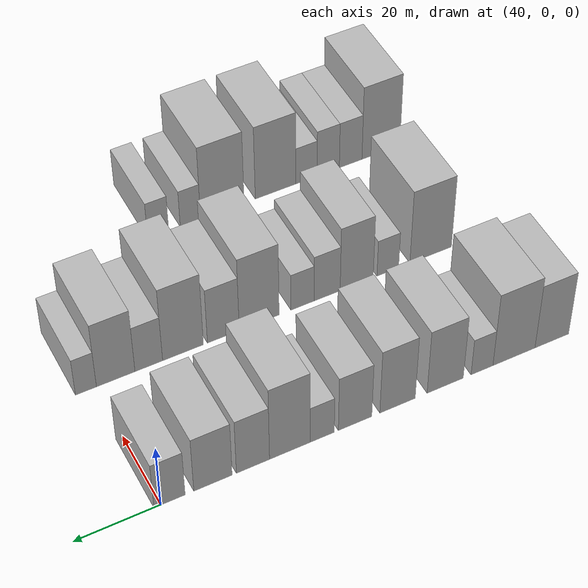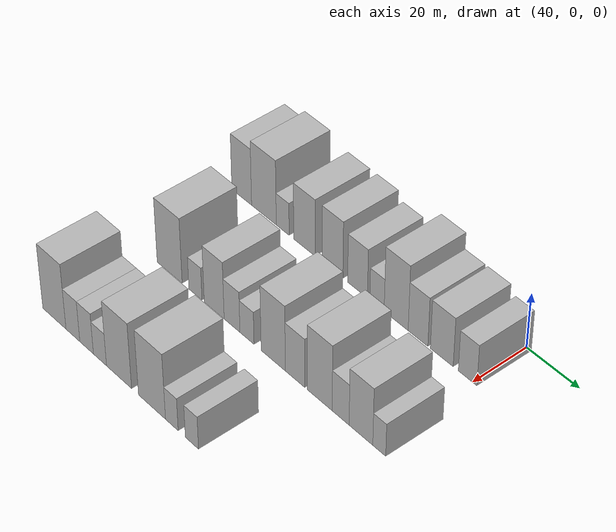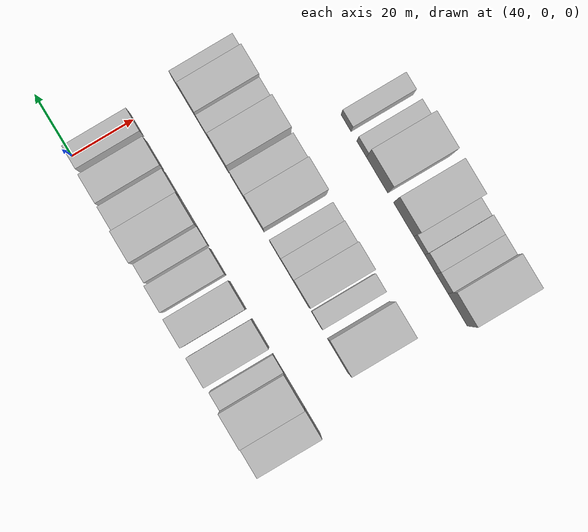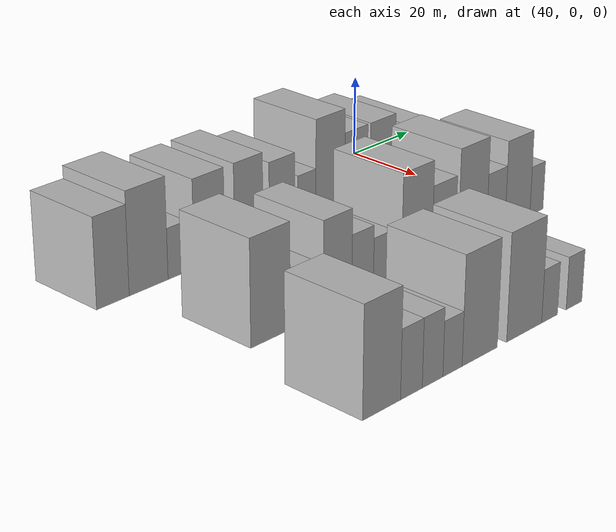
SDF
<sdf version="1.6">
 <world name="default">
  <model name="building_30">
   <static>1</static>
   <pose>50.0000 -96.5013 0 0.000000 0.000000 0.000000</pose>
   <link name="link">
    <pose>0 0 10.50 0 0 0</pose>
    <collision name="collision"><geometry><box><size>20.0000 8.9086 21.0000</size></box></geometry></collision>
    <visual name="visual">
     <cast_shadows>0</cast_shadows>
     <geometry><box><size>20.0000 8.9086 21.0000</size></box></geometry>
     <material>
      <script>
       <uri>model://HANNAS_wall/materials/scripts</uri>
       <uri>model://HANNAS_wall/materials/textures</uri>
       <name>vrc/HANNAS_wall</name>
      </script>
     </material>
    </visual>
   </link>
  </model>
  <model name="building_31">
   <static>1</static>
   <pose>50.0000 -86.5494 0 0.000000 0.000000 0.000000</pose>
   <link name="link">
    <pose>0 0 12.00 0 0 0</pose>
    <collision name="collision"><geometry><box><size>20.0000 10.9953 24.0000</size></box></geometry></collision>
    <visual name="visual">
     <cast_shadows>0</cast_shadows>
     <geometry><box><size>20.0000 10.9953 24.0000</size></box></geometry>
     <material>
      <script>
       <uri>model://HANNAS_wall/materials/scripts</uri>
       <uri>model://HANNAS_wall/materials/textures</uri>
       <name>vrc/HANNAS_wall</name>
      </script>
     </material>
    </visual>
   </link>
  </model>
  <model name="building_32">
   <static>1</static>
   <pose>50.0000 -78.2267 0 0.000000 0.000000 0.000000</pose>
   <link name="link">
    <pose>0 0 6.00 0 0 0</pose>
    <collision name="collision"><geometry><box><size>20.0000 5.6502 12.0000</size></box></geometry></collision>
    <visual name="visual">
     <cast_shadows>0</cast_shadows>
     <geometry><box><size>20.0000 5.6502 12.0000</size></box></geometry>
     <material>
      <script>
       <uri>model://HANNAS_wall/materials/scripts</uri>
       <uri>model://HANNAS_wall/materials/textures</uri>
       <name>vrc/HANNAS_wall</name>
      </script>
     </material>
    </visual>
   </link>
  </model>
  <model name="building_33">
   <static>1</static>
   <pose>50.0000 -68.7945 0 0.000000 0.000000 0.000000</pose>
   <link name="link">
    <pose>0 0 10.50 0 0 0</pose>
    <collision name="collision"><geometry><box><size>20.0000 9.2141 21.0000</size></box></geometry></collision>
    <visual name="visual">
     <cast_shadows>0</cast_shadows>
     <geometry><box><size>20.0000 9.2141 21.0000</size></box></geometry>
     <material>
      <script>
       <uri>model://HANNAS_wall/materials/scripts</uri>
       <uri>model://HANNAS_wall/materials/textures</uri>
       <name>vrc/HANNAS_wall</name>
      </script>
     </material>
    </visual>
   </link>
  </model>
  <model name="building_34">
   <static>1</static>
   <pose>50.0000 -56.7587 0 0.000000 0.000000 0.000000</pose>
   <link name="link">
    <pose>0 0 10.50 0 0 0</pose>
    <collision name="collision"><geometry><box><size>20.0000 8.8575 21.0000</size></box></geometry></collision>
    <visual name="visual">
     <cast_shadows>0</cast_shadows>
     <geometry><box><size>20.0000 8.8575 21.0000</size></box></geometry>
     <material>
      <script>
       <uri>model://HANNAS_wall/materials/scripts</uri>
       <uri>model://HANNAS_wall/materials/textures</uri>
       <name>vrc/HANNAS_wall</name>
      </script>
     </material>
    </visual>
   </link>
  </model>
  <model name="building_35">
   <static>1</static>
   <pose>50.0000 -46.2053 0 0.000000 0.000000 0.000000</pose>
   <link name="link">
    <pose>0 0 9.00 0 0 0</pose>
    <collision name="collision"><geometry><box><size>20.0000 8.2493 18.0000</size></box></geometry></collision>
    <visual name="visual">
     <cast_shadows>0</cast_shadows>
     <geometry><box><size>20.0000 8.2493 18.0000</size></box></geometry>
     <material>
      <script>
       <uri>model://HANNAS_wall/materials/scripts</uri>
       <uri>model://HANNAS_wall/materials/textures</uri>
       <name>vrc/HANNAS_wall</name>
      </script>
     </material>
    </visual>
   </link>
  </model>
  <model name="building_36">
   <static>1</static>
   <pose>50.0000 -38.1359 0 0.000000 0.000000 0.000000</pose>
   <link name="link">
    <pose>0 0 6.00 0 0 0</pose>
    <collision name="collision"><geometry><box><size>20.0000 5.8894 12.0000</size></box></geometry></collision>
    <visual name="visual">
     <cast_shadows>0</cast_shadows>
     <geometry><box><size>20.0000 5.8894 12.0000</size></box></geometry>
     <material>
      <script>
       <uri>model://HANNAS_wall/materials/scripts</uri>
       <uri>model://HANNAS_wall/materials/textures</uri>
       <name>vrc/HANNAS_wall</name>
      </script>
     </material>
    </visual>
   </link>
  </model>
  <model name="building_37">
   <static>1</static>
   <pose>50.0000 -30.3143 0 0.000000 0.000000 0.000000</pose>
   <link name="link">
    <pose>0 0 12.00 0 0 0</pose>
    <collision name="collision"><geometry><box><size>20.0000 9.7538 24.0000</size></box></geometry></collision>
    <visual name="visual">
     <cast_shadows>0</cast_shadows>
     <geometry><box><size>20.0000 9.7538 24.0000</size></box></geometry>
     <material>
      <script>
       <uri>model://HANNAS_wall/materials/scripts</uri>
       <uri>model://HANNAS_wall/materials/textures</uri>
       <name>vrc/HANNAS_wall</name>
      </script>
     </material>
    </visual>
   </link>
  </model>
  <model name="building_38">
   <static>1</static>
   <pose>50.0000 -21.4955 0 0.000000 0.000000 0.000000</pose>
   <link name="link">
    <pose>0 0 9.00 0 0 0</pose>
    <collision name="collision"><geometry><box><size>20.0000 7.8839 18.0000</size></box></geometry></collision>
    <visual name="visual">
     <cast_shadows>0</cast_shadows>
     <geometry><box><size>20.0000 7.8839 18.0000</size></box></geometry>
     <material>
      <script>
       <uri>model://HANNAS_wall/materials/scripts</uri>
       <uri>model://HANNAS_wall/materials/textures</uri>
       <name>vrc/HANNAS_wall</name>
      </script>
     </material>
    </visual>
   </link>
  </model>
  <model name="building_39">
   <static>1</static>
   <pose>50.0000 -12.0647 0 0.000000 0.000000 0.000000</pose>
   <link name="link">
    <pose>0 0 9.00 0 0 0</pose>
    <collision name="collision"><geometry><box><size>20.0000 8.9779 18.0000</size></box></geometry></collision>
    <visual name="visual">
     <cast_shadows>0</cast_shadows>
     <geometry><box><size>20.0000 8.9779 18.0000</size></box></geometry>
     <material>
      <script>
       <uri>model://HANNAS_wall/materials/scripts</uri>
       <uri>model://HANNAS_wall/materials/textures</uri>
       <name>vrc/HANNAS_wall</name>
      </script>
     </material>
    </visual>
   </link>
  </model>
  <model name="building_40">
   <static>1</static>
   <pose>50.0000 -1.9716 0 0.000000 0.000000 0.000000</pose>
   <link name="link">
    <pose>0 0 7.50 0 0 0</pose>
    <collision name="collision"><geometry><box><size>20.0000 7.2081 15.0000</size></box></geometry></collision>
    <visual name="visual">
     <cast_shadows>0</cast_shadows>
     <geometry><box><size>20.0000 7.2081 15.0000</size></box></geometry>
     <material>
      <script>
       <uri>model://HANNAS_wall/materials/scripts</uri>
       <uri>model://HANNAS_wall/materials/textures</uri>
       <name>vrc/HANNAS_wall</name>
      </script>
     </material>
    </visual>
   </link>
  </model>
  <model name="building_114">
   <static>1</static>
   <pose>85.0000 -85.1665 0 0.000000 0.000000 0.000000</pose>
   <link name="link">
    <pose>0 0 12.00 0 0 0</pose>
    <collision name="collision"><geometry><box><size>20.0000 11.1940 24.0000</size></box></geometry></collision>
    <visual name="visual">
     <cast_shadows>0</cast_shadows>
     <geometry><box><size>20.0000 11.1940 24.0000</size></box></geometry>
     <material>
      <script>
       <uri>model://HANNAS_wall/materials/scripts</uri>
       <uri>model://HANNAS_wall/materials/textures</uri>
       <name>vrc/HANNAS_wall</name>
      </script>
     </material>
    </visual>
   </link>
  </model>
  <model name="building_115">
   <static>1</static>
   <pose>85.0000 -73.6883 0 0.000000 0.000000 0.000000</pose>
   <link name="link">
    <pose>0 0 6.00 0 0 0</pose>
    <collision name="collision"><geometry><box><size>20.0000 5.7625 12.0000</size></box></geometry></collision>
    <visual name="visual">
     <cast_shadows>0</cast_shadows>
     <geometry><box><size>20.0000 5.7625 12.0000</size></box></geometry>
     <material>
      <script>
       <uri>model://HANNAS_wall/materials/scripts</uri>
       <uri>model://HANNAS_wall/materials/textures</uri>
       <name>vrc/HANNAS_wall</name>
      </script>
     </material>
    </visual>
   </link>
  </model>
  <model name="building_116">
   <static>1</static>
   <pose>85.0000 -65.4773 0 0.000000 0.000000 0.000000</pose>
   <link name="link">
    <pose>0 0 10.50 0 0 0</pose>
    <collision name="collision"><geometry><box><size>20.0000 8.6596 21.0000</size></box></geometry></collision>
    <visual name="visual">
     <cast_shadows>0</cast_shadows>
     <geometry><box><size>20.0000 8.6596 21.0000</size></box></geometry>
     <material>
      <script>
       <uri>model://HANNAS_wall/materials/scripts</uri>
       <uri>model://HANNAS_wall/materials/textures</uri>
       <name>vrc/HANNAS_wall</name>
      </script>
     </material>
    </visual>
   </link>
  </model>
  <model name="building_117">
   <static>1</static>
   <pose>85.0000 -57.7674 0 0.000000 0.000000 0.000000</pose>
   <link name="link">
    <pose>0 0 7.50 0 0 0</pose>
    <collision name="collision"><geometry><box><size>20.0000 6.7602 15.0000</size></box></geometry></collision>
    <visual name="visual">
     <cast_shadows>0</cast_shadows>
     <geometry><box><size>20.0000 6.7602 15.0000</size></box></geometry>
     <material>
      <script>
       <uri>model://HANNAS_wall/materials/scripts</uri>
       <uri>model://HANNAS_wall/materials/textures</uri>
       <name>vrc/HANNAS_wall</name>
      </script>
     </material>
    </visual>
   </link>
  </model>
  <model name="building_118">
   <static>1</static>
   <pose>85.0000 -51.3932 0 0.000000 0.000000 0.000000</pose>
   <link name="link">
    <pose>0 0 6.00 0 0 0</pose>
    <collision name="collision"><geometry><box><size>20.0000 5.9882 12.0000</size></box></geometry></collision>
    <visual name="visual">
     <cast_shadows>0</cast_shadows>
     <geometry><box><size>20.0000 5.9882 12.0000</size></box></geometry>
     <material>
      <script>
       <uri>model://HANNAS_wall/materials/scripts</uri>
       <uri>model://HANNAS_wall/materials/textures</uri>
       <name>vrc/HANNAS_wall</name>
      </script>
     </material>
    </visual>
   </link>
  </model>
  <model name="building_119">
   <static>1</static>
   <pose>85.0000 -40.3493 0 0.000000 0.000000 0.000000</pose>
   <link name="link">
    <pose>0 0 12.00 0 0 0</pose>
    <collision name="collision"><geometry><box><size>20.0000 10.0996 24.0000</size></box></geometry></collision>
    <visual name="visual">
     <cast_shadows>0</cast_shadows>
     <geometry><box><size>20.0000 10.0996 24.0000</size></box></geometry>
     <material>
      <script>
       <uri>model://HANNAS_wall/materials/scripts</uri>
       <uri>model://HANNAS_wall/materials/textures</uri>
       <name>vrc/HANNAS_wall</name>
      </script>
     </material>
    </visual>
   </link>
  </model>
  <model name="building_120">
   <static>1</static>
   <pose>85.0000 -31.3136 0 0.000000 0.000000 0.000000</pose>
   <link name="link">
    <pose>0 0 9.00 0 0 0</pose>
    <collision name="collision"><geometry><box><size>20.0000 7.9716 18.0000</size></box></geometry></collision>
    <visual name="visual">
     <cast_shadows>0</cast_shadows>
     <geometry><box><size>20.0000 7.9716 18.0000</size></box></geometry>
     <material>
      <script>
       <uri>model://HANNAS_wall/materials/scripts</uri>
       <uri>model://HANNAS_wall/materials/textures</uri>
       <name>vrc/HANNAS_wall</name>
      </script>
     </material>
    </visual>
   </link>
  </model>
  <model name="building_121">
   <static>1</static>
   <pose>85.0000 -21.3061 0 0.000000 0.000000 0.000000</pose>
   <link name="link">
    <pose>0 0 12.00 0 0 0</pose>
    <collision name="collision"><geometry><box><size>20.0000 10.0435 24.0000</size></box></geometry></collision>
    <visual name="visual">
     <cast_shadows>0</cast_shadows>
     <geometry><box><size>20.0000 10.0435 24.0000</size></box></geometry>
     <material>
      <script>
       <uri>model://HANNAS_wall/materials/scripts</uri>
       <uri>model://HANNAS_wall/materials/textures</uri>
       <name>vrc/HANNAS_wall</name>
      </script>
     </material>
    </visual>
   </link>
  </model>
  <model name="building_122">
   <static>1</static>
   <pose>85.0000 -12.9126 0 0.000000 0.000000 0.000000</pose>
   <link name="link">
    <pose>0 0 7.50 0 0 0</pose>
    <collision name="collision"><geometry><box><size>20.0000 6.7434 15.0000</size></box></geometry></collision>
    <visual name="visual">
     <cast_shadows>0</cast_shadows>
     <geometry><box><size>20.0000 6.7434 15.0000</size></box></geometry>
     <material>
      <script>
       <uri>model://HANNAS_wall/materials/scripts</uri>
       <uri>model://HANNAS_wall/materials/textures</uri>
       <name>vrc/HANNAS_wall</name>
      </script>
     </material>
    </visual>
   </link>
  </model>
  <model name="building_123">
   <static>1</static>
   <pose>85.0000 -4.8995 0 0.000000 0.000000 0.000000</pose>
   <link name="link">
    <pose>0 0 10.50 0 0 0</pose>
    <collision name="collision"><geometry><box><size>20.0000 9.2829 21.0000</size></box></geometry></collision>
    <visual name="visual">
     <cast_shadows>0</cast_shadows>
     <geometry><box><size>20.0000 9.2829 21.0000</size></box></geometry>
     <material>
      <script>
       <uri>model://HANNAS_wall/materials/scripts</uri>
       <uri>model://HANNAS_wall/materials/textures</uri>
       <name>vrc/HANNAS_wall</name>
      </script>
     </material>
    </visual>
   </link>
  </model>
  <model name="building_124">
   <static>1</static>
   <pose>85.0000 2.2476 0 0.000000 0.000000 0.000000</pose>
   <link name="link">
    <pose>0 0 6.00 0 0 0</pose>
    <collision name="collision"><geometry><box><size>20.0000 5.0112 12.0000</size></box></geometry></collision>
    <visual name="visual">
     <cast_shadows>0</cast_shadows>
     <geometry><box><size>20.0000 5.0112 12.0000</size></box></geometry>
     <material>
      <script>
       <uri>model://HANNAS_wall/materials/scripts</uri>
       <uri>model://HANNAS_wall/materials/textures</uri>
       <name>vrc/HANNAS_wall</name>
      </script>
     </material>
    </visual>
   </link>
  </model>
  <model name="building_193">
   <static>1</static>
   <pose>120.0000 -91.1231 0 0.000000 0.000000 0.000000</pose>
   <link name="link">
    <pose>0 0 12.00 0 0 0</pose>
    <collision name="collision"><geometry><box><size>20.0000 10.6296 24.0000</size></box></geometry></collision>
    <visual name="visual">
     <cast_shadows>0</cast_shadows>
     <geometry><box><size>20.0000 10.6296 24.0000</size></box></geometry>
     <material>
      <script>
       <uri>model://HANNAS_wall/materials/scripts</uri>
       <uri>model://HANNAS_wall/materials/textures</uri>
       <name>vrc/HANNAS_wall</name>
      </script>
     </material>
    </visual>
   </link>
  </model>
  <model name="building_194">
   <static>1</static>
   <pose>120.0000 -82.6694 0 0.000000 0.000000 0.000000</pose>
   <link name="link">
    <pose>0 0 7.50 0 0 0</pose>
    <collision name="collision"><geometry><box><size>20.0000 6.2778 15.0000</size></box></geometry></collision>
    <visual name="visual">
     <cast_shadows>0</cast_shadows>
     <geometry><box><size>20.0000 6.2778 15.0000</size></box></geometry>
     <material>
      <script>
       <uri>model://HANNAS_wall/materials/scripts</uri>
       <uri>model://HANNAS_wall/materials/textures</uri>
       <name>vrc/HANNAS_wall</name>
      </script>
     </material>
    </visual>
   </link>
  </model>
  <model name="building_195">
   <static>1</static>
   <pose>120.0000 -76.4791 0 0.000000 0.000000 0.000000</pose>
   <link name="link">
    <pose>0 0 7.50 0 0 0</pose>
    <collision name="collision"><geometry><box><size>20.0000 6.1026 15.0000</size></box></geometry></collision>
    <visual name="visual">
     <cast_shadows>0</cast_shadows>
     <geometry><box><size>20.0000 6.1026 15.0000</size></box></geometry>
     <material>
      <script>
       <uri>model://HANNAS_wall/materials/scripts</uri>
       <uri>model://HANNAS_wall/materials/textures</uri>
       <name>vrc/HANNAS_wall</name>
      </script>
     </material>
    </visual>
   </link>
  </model>
  <model name="building_196">
   <static>1</static>
   <pose>120.0000 -70.5212 0 0.000000 0.000000 0.000000</pose>
   <link name="link">
    <pose>0 0 6.00 0 0 0</pose>
    <collision name="collision"><geometry><box><size>20.0000 5.8132 12.0000</size></box></geometry></collision>
    <visual name="visual">
     <cast_shadows>0</cast_shadows>
     <geometry><box><size>20.0000 5.8132 12.0000</size></box></geometry>
     <material>
      <script>
       <uri>model://HANNAS_wall/materials/scripts</uri>
       <uri>model://HANNAS_wall/materials/textures</uri>
       <name>vrc/HANNAS_wall</name>
      </script>
     </material>
    </visual>
   </link>
  </model>
  <model name="building_197">
   <static>1</static>
   <pose>120.0000 -62.1273 0 0.000000 0.000000 0.000000</pose>
   <link name="link">
    <pose>0 0 12.00 0 0 0</pose>
    <collision name="collision"><geometry><box><size>20.0000 10.9748 24.0000</size></box></geometry></collision>
    <visual name="visual">
     <cast_shadows>0</cast_shadows>
     <geometry><box><size>20.0000 10.9748 24.0000</size></box></geometry>
     <material>
      <script>
       <uri>model://HANNAS_wall/materials/scripts</uri>
       <uri>model://HANNAS_wall/materials/textures</uri>
       <name>vrc/HANNAS_wall</name>
      </script>
     </material>
    </visual>
   </link>
  </model>
  <model name="building_198">
   <static>1</static>
   <pose>120.0000 -47.8732 0 0.000000 0.000000 0.000000</pose>
   <link name="link">
    <pose>0 0 12.00 0 0 0</pose>
    <collision name="collision"><geometry><box><size>20.0000 11.5334 24.0000</size></box></geometry></collision>
    <visual name="visual">
     <cast_shadows>0</cast_shadows>
     <geometry><box><size>20.0000 11.5334 24.0000</size></box></geometry>
     <material>
      <script>
       <uri>model://HANNAS_wall/materials/scripts</uri>
       <uri>model://HANNAS_wall/materials/textures</uri>
       <name>vrc/HANNAS_wall</name>
      </script>
     </material>
    </visual>
   </link>
  </model>
  <model name="building_199">
   <static>1</static>
   <pose>120.0000 -39.4438 0 0.000000 0.000000 0.000000</pose>
   <link name="link">
    <pose>0 0 6.00 0 0 0</pose>
    <collision name="collision"><geometry><box><size>20.0000 5.3253 12.0000</size></box></geometry></collision>
    <visual name="visual">
     <cast_shadows>0</cast_shadows>
     <geometry><box><size>20.0000 5.3253 12.0000</size></box></geometry>
     <material>
      <script>
       <uri>model://HANNAS_wall/materials/scripts</uri>
       <uri>model://HANNAS_wall/materials/textures</uri>
       <name>vrc/HANNAS_wall</name>
      </script>
     </material>
    </visual>
   </link>
  </model>
  <model name="building_200">
   <static>1</static>
   <pose>120.0000 -31.0499 0 0.000000 0.000000 0.000000</pose>
   <link name="link">
    <pose>0 0 6.00 0 0 0</pose>
    <collision name="collision"><geometry><box><size>20.0000 5.4625 12.0000</size></box></geometry></collision>
    <visual name="visual">
     <cast_shadows>0</cast_shadows>
     <geometry><box><size>20.0000 5.4625 12.0000</size></box></geometry>
     <material>
      <script>
       <uri>model://HANNAS_wall/materials/scripts</uri>
       <uri>model://HANNAS_wall/materials/textures</uri>
       <name>vrc/HANNAS_wall</name>
      </script>
     </material>
    </visual>
   </link>
  </model>
 </world>
</sdf>
